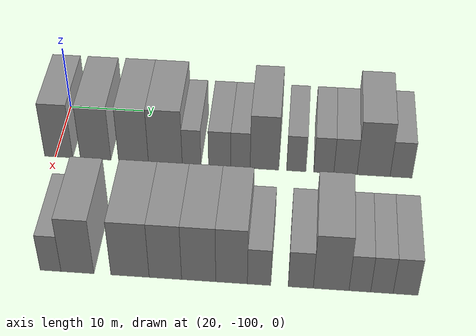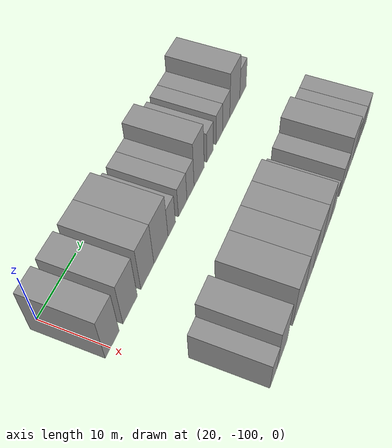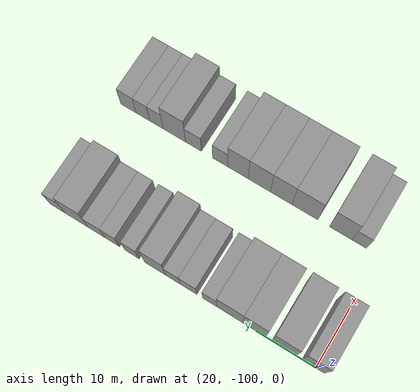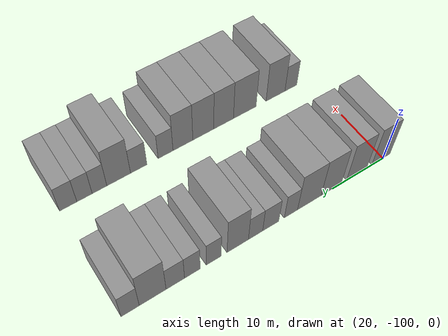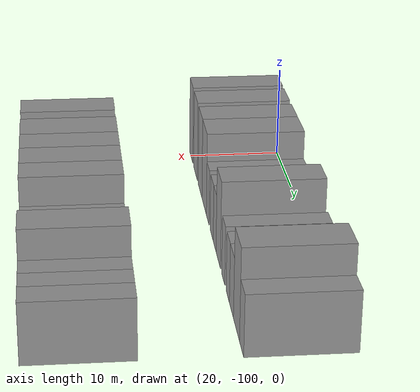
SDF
<sdf version="1.6">
 <world name="default">
  <model name="building_27">
   <static>1</static>
   <pose>25.0000 -99.5508 0 0.000000 0.000000 0.000000</pose>
   <link name="link">
    <pose>0 0 4.50 0 0 0</pose>
    <collision name="collision"><geometry><box><size>10.0000 3.6984 9.0000</size></box></geometry></collision>
    <visual name="visual">
     <cast_shadows>0</cast_shadows>
     <geometry><box><size>10.0000 3.6984 9.0000</size></box></geometry>
     <material>
      <script>
       <uri>model://grey_wall/materials/scripts</uri>
       <uri>model://grey_wall/materials/textures</uri>
       <name>vrc/grey_wall</name>
      </script>
     </material>
    </visual>
   </link>
  </model>
  <model name="building_28">
   <static>1</static>
   <pose>25.0000 -94.6884 0 0.000000 0.000000 0.000000</pose>
   <link name="link">
    <pose>0 0 4.50 0 0 0</pose>
    <collision name="collision"><geometry><box><size>10.0000 4.0265 9.0000</size></box></geometry></collision>
    <visual name="visual">
     <cast_shadows>0</cast_shadows>
     <geometry><box><size>10.0000 4.0265 9.0000</size></box></geometry>
     <material>
      <script>
       <uri>model://grey_wall/materials/scripts</uri>
       <uri>model://grey_wall/materials/textures</uri>
       <name>vrc/grey_wall</name>
      </script>
     </material>
    </visual>
   </link>
  </model>
  <model name="building_29">
   <static>1</static>
   <pose>25.0000 -89.7209 0 0.000000 0.000000 0.000000</pose>
   <link name="link">
    <pose>0 0 4.50 0 0 0</pose>
    <collision name="collision"><geometry><box><size>10.0000 3.9085 9.0000</size></box></geometry></collision>
    <visual name="visual">
     <cast_shadows>0</cast_shadows>
     <geometry><box><size>10.0000 3.9085 9.0000</size></box></geometry>
     <material>
      <script>
       <uri>model://grey_wall/materials/scripts</uri>
       <uri>model://grey_wall/materials/textures</uri>
       <name>vrc/grey_wall</name>
      </script>
     </material>
    </visual>
   </link>
  </model>
  <model name="building_30">
   <static>1</static>
   <pose>25.0000 -85.5600 0 0.000000 0.000000 0.000000</pose>
   <link name="link">
    <pose>0 0 4.50 0 0 0</pose>
    <collision name="collision"><geometry><box><size>10.0000 4.4133 9.0000</size></box></geometry></collision>
    <visual name="visual">
     <cast_shadows>0</cast_shadows>
     <geometry><box><size>10.0000 4.4133 9.0000</size></box></geometry>
     <material>
      <script>
       <uri>model://grey_wall/materials/scripts</uri>
       <uri>model://grey_wall/materials/textures</uri>
       <name>vrc/grey_wall</name>
      </script>
     </material>
    </visual>
   </link>
  </model>
  <model name="building_31">
   <static>1</static>
   <pose>25.0000 -82.1395 0 0.000000 0.000000 0.000000</pose>
   <link name="link">
    <pose>0 0 3.00 0 0 0</pose>
    <collision name="collision"><geometry><box><size>10.0000 2.4278 6.0000</size></box></geometry></collision>
    <visual name="visual">
     <cast_shadows>0</cast_shadows>
     <geometry><box><size>10.0000 2.4278 6.0000</size></box></geometry>
     <material>
      <script>
       <uri>model://grey_wall/materials/scripts</uri>
       <uri>model://grey_wall/materials/textures</uri>
       <name>vrc/grey_wall</name>
      </script>
     </material>
    </visual>
   </link>
  </model>
  <model name="building_32">
   <static>1</static>
   <pose>25.0000 -78.4875 0 0.000000 0.000000 0.000000</pose>
   <link name="link">
    <pose>0 0 3.00 0 0 0</pose>
    <collision name="collision"><geometry><box><size>10.0000 2.8761 6.0000</size></box></geometry></collision>
    <visual name="visual">
     <cast_shadows>0</cast_shadows>
     <geometry><box><size>10.0000 2.8761 6.0000</size></box></geometry>
     <material>
      <script>
       <uri>model://grey_wall/materials/scripts</uri>
       <uri>model://grey_wall/materials/textures</uri>
       <name>vrc/grey_wall</name>
      </script>
     </material>
    </visual>
   </link>
  </model>
  <model name="building_33">
   <static>1</static>
   <pose>25.0000 -75.7986 0 0.000000 0.000000 0.000000</pose>
   <link name="link">
    <pose>0 0 3.00 0 0 0</pose>
    <collision name="collision"><geometry><box><size>10.0000 2.5016 6.0000</size></box></geometry></collision>
    <visual name="visual">
     <cast_shadows>0</cast_shadows>
     <geometry><box><size>10.0000 2.5016 6.0000</size></box></geometry>
     <material>
      <script>
       <uri>model://grey_wall/materials/scripts</uri>
       <uri>model://grey_wall/materials/textures</uri>
       <name>vrc/grey_wall</name>
      </script>
     </material>
    </visual>
   </link>
  </model>
  <model name="building_34">
   <static>1</static>
   <pose>25.0000 -72.7045 0 0.000000 0.000000 0.000000</pose>
   <link name="link">
    <pose>0 0 4.50 0 0 0</pose>
    <collision name="collision"><geometry><box><size>10.0000 3.6865 9.0000</size></box></geometry></collision>
    <visual name="visual">
     <cast_shadows>0</cast_shadows>
     <geometry><box><size>10.0000 3.6865 9.0000</size></box></geometry>
     <material>
      <script>
       <uri>model://grey_wall/materials/scripts</uri>
       <uri>model://grey_wall/materials/textures</uri>
       <name>vrc/grey_wall</name>
      </script>
     </material>
    </visual>
   </link>
  </model>
  <model name="building_35">
   <static>1</static>
   <pose>25.0000 -68.6142 0 0.000000 0.000000 0.000000</pose>
   <link name="link">
    <pose>0 0 3.00 0 0 0</pose>
    <collision name="collision"><geometry><box><size>10.0000 2.4942 6.0000</size></box></geometry></collision>
    <visual name="visual">
     <cast_shadows>0</cast_shadows>
     <geometry><box><size>10.0000 2.4942 6.0000</size></box></geometry>
     <material>
      <script>
       <uri>model://grey_wall/materials/scripts</uri>
       <uri>model://grey_wall/materials/textures</uri>
       <name>vrc/grey_wall</name>
      </script>
     </material>
    </visual>
   </link>
  </model>
  <model name="building_36">
   <static>1</static>
   <pose>25.0000 -65.0861 0 0.000000 0.000000 0.000000</pose>
   <link name="link">
    <pose>0 0 3.00 0 0 0</pose>
    <collision name="collision"><geometry><box><size>10.0000 2.5619 6.0000</size></box></geometry></collision>
    <visual name="visual">
     <cast_shadows>0</cast_shadows>
     <geometry><box><size>10.0000 2.5619 6.0000</size></box></geometry>
     <material>
      <script>
       <uri>model://grey_wall/materials/scripts</uri>
       <uri>model://grey_wall/materials/textures</uri>
       <name>vrc/grey_wall</name>
      </script>
     </material>
    </visual>
   </link>
  </model>
  <model name="building_37">
   <static>1</static>
   <pose>25.0000 -62.3235 0 0.000000 0.000000 0.000000</pose>
   <link name="link">
    <pose>0 0 3.00 0 0 0</pose>
    <collision name="collision"><geometry><box><size>10.0000 2.9633 6.0000</size></box></geometry></collision>
    <visual name="visual">
     <cast_shadows>0</cast_shadows>
     <geometry><box><size>10.0000 2.9633 6.0000</size></box></geometry>
     <material>
      <script>
       <uri>model://grey_wall/materials/scripts</uri>
       <uri>model://grey_wall/materials/textures</uri>
       <name>vrc/grey_wall</name>
      </script>
     </material>
    </visual>
   </link>
  </model>
  <model name="building_38">
   <static>1</static>
   <pose>25.0000 -58.7388 0 0.000000 0.000000 0.000000</pose>
   <link name="link">
    <pose>0 0 4.50 0 0 0</pose>
    <collision name="collision"><geometry><box><size>10.0000 4.2061 9.0000</size></box></geometry></collision>
    <visual name="visual">
     <cast_shadows>0</cast_shadows>
     <geometry><box><size>10.0000 4.2061 9.0000</size></box></geometry>
     <material>
      <script>
       <uri>model://grey_wall/materials/scripts</uri>
       <uri>model://grey_wall/materials/textures</uri>
       <name>vrc/grey_wall</name>
      </script>
     </material>
    </visual>
   </link>
  </model>
  <model name="building_39">
   <static>1</static>
   <pose>25.0000 -55.2406 0 0.000000 0.000000 0.000000</pose>
   <link name="link">
    <pose>0 0 3.00 0 0 0</pose>
    <collision name="collision"><geometry><box><size>10.0000 2.7902 6.0000</size></box></geometry></collision>
    <visual name="visual">
     <cast_shadows>0</cast_shadows>
     <geometry><box><size>10.0000 2.7902 6.0000</size></box></geometry>
     <material>
      <script>
       <uri>model://grey_wall/materials/scripts</uri>
       <uri>model://grey_wall/materials/textures</uri>
       <name>vrc/grey_wall</name>
      </script>
     </material>
    </visual>
   </link>
  </model>
  <model name="building_125">
   <static>1</static>
   <pose>44.0000 -96.5056 0 0.000000 0.000000 0.000000</pose>
   <link name="link">
    <pose>0 0 3.00 0 0 0</pose>
    <collision name="collision"><geometry><box><size>10.0000 2.4582 6.0000</size></box></geometry></collision>
    <visual name="visual">
     <cast_shadows>0</cast_shadows>
     <geometry><box><size>10.0000 2.4582 6.0000</size></box></geometry>
     <material>
      <script>
       <uri>model://grey_wall/materials/scripts</uri>
       <uri>model://grey_wall/materials/textures</uri>
       <name>vrc/grey_wall</name>
      </script>
     </material>
    </visual>
   </link>
  </model>
  <model name="building_126">
   <static>1</static>
   <pose>44.0000 -93.3424 0 0.000000 0.000000 0.000000</pose>
   <link name="link">
    <pose>0 0 4.50 0 0 0</pose>
    <collision name="collision"><geometry><box><size>10.0000 3.8682 9.0000</size></box></geometry></collision>
    <visual name="visual">
     <cast_shadows>0</cast_shadows>
     <geometry><box><size>10.0000 3.8682 9.0000</size></box></geometry>
     <material>
      <script>
       <uri>model://grey_wall/materials/scripts</uri>
       <uri>model://grey_wall/materials/textures</uri>
       <name>vrc/grey_wall</name>
      </script>
     </material>
    </visual>
   </link>
  </model>
  <model name="building_127">
   <static>1</static>
   <pose>44.0000 -87.1707 0 0.000000 0.000000 0.000000</pose>
   <link name="link">
    <pose>0 0 4.50 0 0 0</pose>
    <collision name="collision"><geometry><box><size>10.0000 4.4753 9.0000</size></box></geometry></collision>
    <visual name="visual">
     <cast_shadows>0</cast_shadows>
     <geometry><box><size>10.0000 4.4753 9.0000</size></box></geometry>
     <material>
      <script>
       <uri>model://grey_wall/materials/scripts</uri>
       <uri>model://grey_wall/materials/textures</uri>
       <name>vrc/grey_wall</name>
      </script>
     </material>
    </visual>
   </link>
  </model>
  <model name="building_128">
   <static>1</static>
   <pose>44.0000 -83.0394 0 0.000000 0.000000 0.000000</pose>
   <link name="link">
    <pose>0 0 4.50 0 0 0</pose>
    <collision name="collision"><geometry><box><size>10.0000 3.7873 9.0000</size></box></geometry></collision>
    <visual name="visual">
     <cast_shadows>0</cast_shadows>
     <geometry><box><size>10.0000 3.7873 9.0000</size></box></geometry>
     <material>
      <script>
       <uri>model://grey_wall/materials/scripts</uri>
       <uri>model://grey_wall/materials/textures</uri>
       <name>vrc/grey_wall</name>
      </script>
     </material>
    </visual>
   </link>
  </model>
  <model name="building_129">
   <static>1</static>
   <pose>44.0000 -79.1648 0 0.000000 0.000000 0.000000</pose>
   <link name="link">
    <pose>0 0 4.50 0 0 0</pose>
    <collision name="collision"><geometry><box><size>10.0000 3.9618 9.0000</size></box></geometry></collision>
    <visual name="visual">
     <cast_shadows>0</cast_shadows>
     <geometry><box><size>10.0000 3.9618 9.0000</size></box></geometry>
     <material>
      <script>
       <uri>model://grey_wall/materials/scripts</uri>
       <uri>model://grey_wall/materials/textures</uri>
       <name>vrc/grey_wall</name>
      </script>
     </material>
    </visual>
   </link>
  </model>
  <model name="building_130">
   <static>1</static>
   <pose>44.0000 -75.3592 0 0.000000 0.000000 0.000000</pose>
   <link name="link">
    <pose>0 0 4.50 0 0 0</pose>
    <collision name="collision"><geometry><box><size>10.0000 3.6494 9.0000</size></box></geometry></collision>
    <visual name="visual">
     <cast_shadows>0</cast_shadows>
     <geometry><box><size>10.0000 3.6494 9.0000</size></box></geometry>
     <material>
      <script>
       <uri>model://grey_wall/materials/scripts</uri>
       <uri>model://grey_wall/materials/textures</uri>
       <name>vrc/grey_wall</name>
      </script>
     </material>
    </visual>
   </link>
  </model>
  <model name="building_131">
   <static>1</static>
   <pose>44.0000 -72.1855 0 0.000000 0.000000 0.000000</pose>
   <link name="link">
    <pose>0 0 3.00 0 0 0</pose>
    <collision name="collision"><geometry><box><size>10.0000 2.6981 6.0000</size></box></geometry></collision>
    <visual name="visual">
     <cast_shadows>0</cast_shadows>
     <geometry><box><size>10.0000 2.6981 6.0000</size></box></geometry>
     <material>
      <script>
       <uri>model://grey_wall/materials/scripts</uri>
       <uri>model://grey_wall/materials/textures</uri>
       <name>vrc/grey_wall</name>
      </script>
     </material>
    </visual>
   </link>
  </model>
  <model name="building_132">
   <static>1</static>
   <pose>44.0000 -67.3968 0 0.000000 0.000000 0.000000</pose>
   <link name="link">
    <pose>0 0 3.00 0 0 0</pose>
    <collision name="collision"><geometry><box><size>10.0000 2.8794 6.0000</size></box></geometry></collision>
    <visual name="visual">
     <cast_shadows>0</cast_shadows>
     <geometry><box><size>10.0000 2.8794 6.0000</size></box></geometry>
     <material>
      <script>
       <uri>model://grey_wall/materials/scripts</uri>
       <uri>model://grey_wall/materials/textures</uri>
       <name>vrc/grey_wall</name>
      </script>
     </material>
    </visual>
   </link>
  </model>
  <model name="building_133">
   <static>1</static>
   <pose>44.0000 -63.9170 0 0.000000 0.000000 0.000000</pose>
   <link name="link">
    <pose>0 0 4.50 0 0 0</pose>
    <collision name="collision"><geometry><box><size>10.0000 4.0803 9.0000</size></box></geometry></collision>
    <visual name="visual">
     <cast_shadows>0</cast_shadows>
     <geometry><box><size>10.0000 4.0803 9.0000</size></box></geometry>
     <material>
      <script>
       <uri>model://grey_wall/materials/scripts</uri>
       <uri>model://grey_wall/materials/textures</uri>
       <name>vrc/grey_wall</name>
      </script>
     </material>
    </visual>
   </link>
  </model>
  <model name="building_134">
   <static>1</static>
   <pose>44.0000 -60.6426 0 0.000000 0.000000 0.000000</pose>
   <link name="link">
    <pose>0 0 3.00 0 0 0</pose>
    <collision name="collision"><geometry><box><size>10.0000 2.4685 6.0000</size></box></geometry></collision>
    <visual name="visual">
     <cast_shadows>0</cast_shadows>
     <geometry><box><size>10.0000 2.4685 6.0000</size></box></geometry>
     <material>
      <script>
       <uri>model://grey_wall/materials/scripts</uri>
       <uri>model://grey_wall/materials/textures</uri>
       <name>vrc/grey_wall</name>
      </script>
     </material>
    </visual>
   </link>
  </model>
  <model name="building_135">
   <static>1</static>
   <pose>44.0000 -58.1357 0 0.000000 0.000000 0.000000</pose>
   <link name="link">
    <pose>0 0 3.00 0 0 0</pose>
    <collision name="collision"><geometry><box><size>10.0000 2.5454 6.0000</size></box></geometry></collision>
    <visual name="visual">
     <cast_shadows>0</cast_shadows>
     <geometry><box><size>10.0000 2.5454 6.0000</size></box></geometry>
     <material>
      <script>
       <uri>model://grey_wall/materials/scripts</uri>
       <uri>model://grey_wall/materials/textures</uri>
       <name>vrc/grey_wall</name>
      </script>
     </material>
    </visual>
   </link>
  </model>
  <model name="building_136">
   <static>1</static>
   <pose>44.0000 -55.4483 0 0.000000 0.000000 0.000000</pose>
   <link name="link">
    <pose>0 0 3.00 0 0 0</pose>
    <collision name="collision"><geometry><box><size>10.0000 2.8293 6.0000</size></box></geometry></collision>
    <visual name="visual">
     <cast_shadows>0</cast_shadows>
     <geometry><box><size>10.0000 2.8293 6.0000</size></box></geometry>
     <material>
      <script>
       <uri>model://grey_wall/materials/scripts</uri>
       <uri>model://grey_wall/materials/textures</uri>
       <name>vrc/grey_wall</name>
      </script>
     </material>
    </visual>
   </link>
  </model>
 </world>
</sdf>
